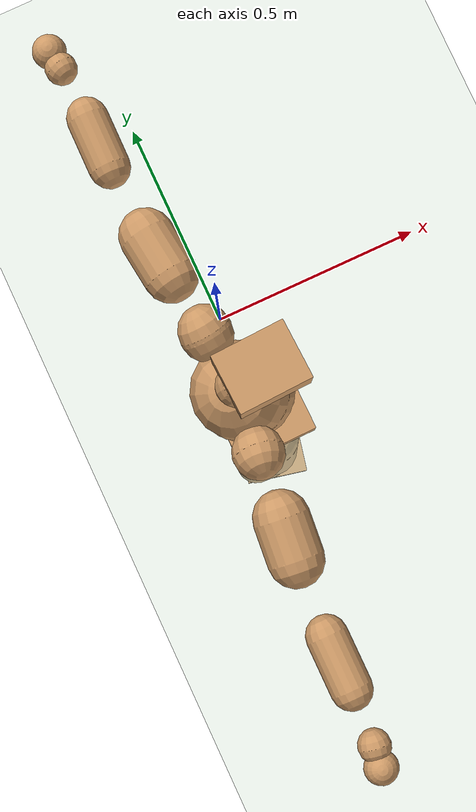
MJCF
<mujoco model="humanoid">
  <compiler coordinate="local" angle="radian"/>
  <default>
    <joint damping="0.0" armature="0.01" stiffness="0.0" limited="true"/>
    <geom conaffinity="1" condim="3" contype="7" margin="0.001" rgba="0.8 0.6 .4 1"/>
  </default>
  <asset>
    <texture type="skybox" builtin="gradient" rgb1=".4 .5 .6" rgb2="0 0 0" width="100" height="100"/>
    <texture builtin="flat" height="1278" mark="cross" markrgb="1 1 1" name="texgeom" random="0.01" rgb1="0.8 0.6 0.4" rgb2="0.8 0.6 0.4" type="cube" width="127"/>
    <texture builtin="checker" height="100" name="texplane" rgb1="0 0 0" rgb2="0.8 0.8 0.8" type="2d" width="100"/>
    <material name="MatPlane" reflectance="0.5" shininess="1" specular="1" texrepeat="60 60" texture="texplane"/>
    <material name="geom" texture="texgeom" texuniform="true"/>
  </asset>
  <worldbody>
    <light cutoff="100" diffuse="1 1 1" dir="-0 0 -1.3" directional="true" exponent="1" pos="0 0 1.3" specular=".1 .1 .1"/>
    <geom conaffinity="1" condim="3" name="floor" pos="0 0 0" rgba="0.8 0.9 0.8 1" size="100 100 .2" type="plane" material="MatPlane"/>
    <body name="Pelvis" pos="-0.0011 -0.2148 0.0426">
      <freejoint name="Pelvis"/>
      <geom type="box" contype="1" conaffinity="1" density="5359.374747" pos="-0.0052 -0.0001 -0.0125" size="0.0968 0.1184 0.0426" quat="1.0000 0.0000 0.0000 0.0091" name="Pelvis"/>
      <body name="L_Hip" pos="-0.0002 0.0786 -0.0909">
        <joint name="L_Hip_x" type="hinge" pos="0 0 0" axis="1 0 0" stiffness="1600" damping="160" armature="0.02" range="-180.0000 180.0000"/>
        <joint name="L_Hip_y" type="hinge" pos="0 0 0" axis="0 1 0" stiffness="1600" damping="160" armature="0.02" range="-180.0000 180.0000"/>
        <joint name="L_Hip_z" type="hinge" pos="0 0 0" axis="0 0 1" stiffness="1600" damping="160" armature="0.02" range="-180.0000 180.0000"/>
        <geom type="capsule" contype="1" conaffinity="1" density="2040.816327" size="0.067" fromto="-0.0032 0.0076 -0.0967 -0.0089 0.0214 -0.2715" name="L_Hip"/>
        <body name="L_Knee" pos="-0.012 0.029 -0.3682">
          <joint name="L_Knee_x" type="hinge" pos="0 0 0" axis="1 0 0" stiffness="1600" damping="160" armature="0.02" range="-180.0000 180.0000"/>
          <joint name="L_Knee_y" type="hinge" pos="0 0 0" axis="0 1 0" stiffness="1600" damping="160" armature="0.02" range="-180.0000 180.0000"/>
          <joint name="L_Knee_z" type="hinge" pos="0 0 0" axis="0 0 1" stiffness="1600" damping="160" armature="0.02" range="-180.0000 180.0000"/>
          <geom type="capsule" contype="1" conaffinity="1" density="1234.567901" size="0.057" fromto="-0.0103 -0.0025 -0.0864 -0.0370 -0.0091 -0.3097" name="L_Knee"/>
          <body name="L_Ankle" pos="-0.0473 -0.0116 -0.3961">
            <joint name="L_Ankle_x" type="hinge" pos="0 0 0" axis="1 0 0" stiffness="1600" damping="160" armature="0.02" range="-180.0000 180.0000"/>
            <joint name="L_Ankle_y" type="hinge" pos="0 0 0" axis="0 1 0" stiffness="1600" damping="160" armature="0.02" range="-180.0000 180.0000"/>
            <joint name="L_Ankle_z" type="hinge" pos="0 0 0" axis="0 0 1" stiffness="1600" damping="160" armature="0.02" range="-180.0000 180.0000"/>
            <geom type="box" contype="1" conaffinity="1" density="999.999949" pos="0.0598 0.0136 -0.0290" size="0.087 0.0503 0.0209" quat="0.9937 0.0000 0.0000 0.1117" name="L_Ankle"/>
            <body name="L_Toe" pos="0.1195 0.0272 -0.0581">
              <joint name="L_Toe_x" type="hinge" pos="0 0 0" axis="1 0 0" stiffness="1000" damping="100" armature="0.02" range="-180.0000 180.0000"/>
              <joint name="L_Toe_y" type="hinge" pos="0 0 0" axis="0 1 0" stiffness="1000" damping="100" armature="0.02" range="-180.0000 180.0000"/>
              <joint name="L_Toe_z" type="hinge" pos="0 0 0" axis="0 0 1" stiffness="1000" damping="100" armature="0.02" range="-180.0000 180.0000"/>
              <geom type="box" contype="1" conaffinity="1" density="8420186.111216" pos="0.0000 0.0000 0.0286" size="0.0011 0.0025 0.001" quat="0.9931 0.0000 0.0000 0.1177" name="L_Toe"/>
            </body>
          </body>
        </body>
      </body>
      <body name="R_Hip" pos="0.0026 -0.0762 -0.0908">
        <joint name="R_Hip_x" type="hinge" pos="0 0 0" axis="1 0 0" stiffness="1600" damping="160" armature="0.02" range="-180.0000 180.0000"/>
        <joint name="R_Hip_y" type="hinge" pos="0 0 0" axis="0 1 0" stiffness="1600" damping="160" armature="0.02" range="-180.0000 180.0000"/>
        <joint name="R_Hip_z" type="hinge" pos="0 0 0" axis="0 0 1" stiffness="1600" damping="160" armature="0.02" range="-180.0000 180.0000"/>
        <geom type="capsule" contype="1" conaffinity="1" density="2040.816327" size="0.0663" fromto="-0.0036 -0.0092 -0.0958 -0.0104 -0.0267 -0.2771" name="R_Hip"/>
        <body name="R_Knee" pos="-0.014 -0.0359 -0.3729">
          <joint name="R_Knee_x" type="hinge" pos="0 0 0" axis="1 0 0" stiffness="1600" damping="160" armature="0.02" range="-180.0000 180.0000"/>
          <joint name="R_Knee_y" type="hinge" pos="0 0 0" axis="0 1 0" stiffness="1600" damping="160" armature="0.02" range="-180.0000 180.0000"/>
          <joint name="R_Knee_z" type="hinge" pos="0 0 0" axis="0 0 1" stiffness="1600" damping="160" armature="0.02" range="-180.0000 180.0000"/>
          <geom type="capsule" contype="1" conaffinity="1" density="1234.567901" size="0.0571" fromto="-0.0101 0.0028 -0.0865 -0.0362 0.0100 -0.3099" name="R_Knee"/>
          <body name="R_Ankle" pos="-0.0463 0.0128 -0.3964">
            <joint name="R_Ankle_x" type="hinge" pos="0 0 0" axis="1 0 0" stiffness="1600" damping="160" armature="0.02" range="-180.0000 180.0000"/>
            <joint name="R_Ankle_y" type="hinge" pos="0 0 0" axis="0 1 0" stiffness="1600" damping="160" armature="0.02" range="-180.0000 180.0000"/>
            <joint name="R_Ankle_z" type="hinge" pos="0 0 0" axis="0 0 1" stiffness="1600" damping="160" armature="0.02" range="-180.0000 180.0000"/>
            <geom type="box" contype="1" conaffinity="1" density="1000.000011" pos="0.0619 -0.0134 -0.0244" size="0.0875 0.0489 0.0213" quat="0.9943 0.0000 0.0000 -0.1065" name="R_Ankle"/>
            <body name="R_Toe" pos="0.1239 -0.0268 -0.0488">
              <joint name="R_Toe_x" type="hinge" pos="0 0 0" axis="1 0 0" stiffness="1000" damping="100" armature="0.02" range="-180.0000 180.0000"/>
              <joint name="R_Toe_y" type="hinge" pos="0 0 0" axis="0 1 0" stiffness="1000" damping="100" armature="0.02" range="-180.0000 180.0000"/>
              <joint name="R_Toe_z" type="hinge" pos="0 0 0" axis="0 0 1" stiffness="1000" damping="100" armature="0.02" range="-180.0000 180.0000"/>
              <geom type="box" contype="1" conaffinity="1" density="8200562.166602" pos="0.0000 0.0000 0.0265" size="0.001 0.0025 0.0012" quat="0.9953 0.0000 0.0000 -0.0972" name="R_Toe"/>
            </body>
          </body>
        </body>
      </body>
      <body name="Torso" pos="-0.0333 -0.0029 0.1067">
        <joint name="Torso_x" type="hinge" pos="0 0 0" axis="1 0 0" stiffness="2000" damping="200" armature="0.02" range="-180.0000 180.0000"/>
        <joint name="Torso_y" type="hinge" pos="0 0 0" axis="0 1 0" stiffness="2000" damping="200" armature="0.02" range="-180.0000 180.0000"/>
        <joint name="Torso_z" type="hinge" pos="0 0 0" axis="0 0 1" stiffness="2000" damping="200" armature="0.02" range="-180.0000 180.0000"/>
        <geom type="capsule" contype="1" conaffinity="1" density="2040.816327" size="0.0793" fromto="-0.0046 0.0024 0.0792 -0.0024 0.0013 0.0419" name="Torso"/>
        <body name="Spine" pos="-0.007 0.0036 0.1211">
          <joint name="Spine_x" type="hinge" pos="0 0 0" axis="1 0 0" stiffness="2000" damping="200" armature="0.02" range="-180.0000 180.0000"/>
          <joint name="Spine_y" type="hinge" pos="0 0 0" axis="0 1 0" stiffness="2000" damping="200" armature="0.02" range="-180.0000 180.0000"/>
          <joint name="Spine_z" type="hinge" pos="0 0 0" axis="0 0 1" stiffness="2000" damping="200" armature="0.02" range="-180.0000 180.0000"/>
          <geom type="capsule" contype="1" conaffinity="1" density="2040.816327" size="0.0792" fromto="0.0418 0.0029 0.0673 -0.0113 -0.0008 -0.0181" name="Spine"/>
          <body name="Chest" pos="0.0305 0.0021 0.0491">
            <joint name="Chest_x" type="hinge" pos="0 0 0" axis="1 0 0" stiffness="2000" damping="200" armature="0.02" range="-180.0000 180.0000"/>
            <joint name="Chest_y" type="hinge" pos="0 0 0" axis="0 1 0" stiffness="2000" damping="200" armature="0.02" range="-180.0000 180.0000"/>
            <joint name="Chest_z" type="hinge" pos="0 0 0" axis="0 0 1" stiffness="2000" damping="200" armature="0.02" range="-180.0000 180.0000"/>
            <geom type="capsule" contype="1" conaffinity="1" density="2040.816327" size="0.1052" fromto="-0.0304 -0.0007 0.1007 -0.0172 -0.0004 0.0570" name="Chest"/>
            <body name="Neck" pos="-0.0568 -0.002 0.2215">
              <joint name="Neck_x" type="hinge" pos="0 0 0" axis="1 0 0" stiffness="1000" damping="100" armature="0.02" range="-180.0000 180.0000"/>
              <joint name="Neck_y" type="hinge" pos="0 0 0" axis="0 1 0" stiffness="1000" damping="100" armature="0.02" range="-180.0000 180.0000"/>
              <joint name="Neck_z" type="hinge" pos="0 0 0" axis="0 0 1" stiffness="1000" damping="100" armature="0.02" range="-180.0000 180.0000"/>
              <geom type="capsule" contype="1" conaffinity="1" density="1000" size="0.0442" fromto="0.0280 0.0002 0.0342 0.0201 0.0002 0.0245" name="Neck"/>
              <body name="Head" pos="0.0481 0.0004 0.0587">
                <joint name="Head_x" type="hinge" pos="0 0 0" axis="1 0 0" stiffness="1000" damping="100" armature="0.02" range="-180.0000 180.0000"/>
                <joint name="Head_y" type="hinge" pos="0 0 0" axis="0 1 0" stiffness="1000" damping="100" armature="0.02" range="-180.0000 180.0000"/>
                <joint name="Head_z" type="hinge" pos="0 0 0" axis="0 0 1" stiffness="1000" damping="100" armature="0.02" range="-180.0000 180.0000"/>
                <geom type="box" contype="1" conaffinity="1" density="2250.000085" pos="0.0250 0.0012 0.0304" size="0.0766 0.062 0.0539" quat="0.9997 0.0000 0.0000 0.0235" name="Head"/>
              </body>
            </body>
            <body name="L_Thorax" pos="-0.0409 0.0837 0.1269">
              <joint name="L_Thorax_x" type="hinge" pos="0 0 0" axis="1 0 0" stiffness="1000" damping="100" armature="0.02" range="-180.0000 180.0000"/>
              <joint name="L_Thorax_y" type="hinge" pos="0 0 0" axis="0 1 0" stiffness="1000" damping="100" armature="0.02" range="-180.0000 180.0000"/>
              <joint name="L_Thorax_z" type="hinge" pos="0 0 0" axis="0 0 1" stiffness="1000" damping="100" armature="0.02" range="-180.0000 180.0000"/>
              <geom type="capsule" contype="1" conaffinity="1" density="1000" size="0.0563" fromto="-0.0055 0.0524 0.0196 -0.0046 0.0437 0.0163" name="L_Thorax"/>
              <body name="L_Shoulder" pos="-0.0101 0.0962 0.0359">
                <joint name="L_Shoulder_x" type="hinge" pos="0 0 0" axis="1 0 0" stiffness="1000" damping="100" armature="0.02" range="-720.0000 720.0000"/>
                <joint name="L_Shoulder_y" type="hinge" pos="0 0 0" axis="0 1 0" stiffness="1000" damping="100" armature="0.02" range="-720.0000 720.0000"/>
                <joint name="L_Shoulder_z" type="hinge" pos="0 0 0" axis="0 0 1" stiffness="1000" damping="100" armature="0.02" range="-720.0000 720.0000"/>
                <geom type="capsule" contype="1" conaffinity="1" density="1000" size="0.0579" fromto="-0.0104 0.0871 -0.0048 -0.0218 0.1829 -0.0100" name="L_Shoulder"/>
                <body name="L_Elbow" pos="-0.0322 0.2701 -0.0148">
                  <joint name="L_Elbow_x" type="hinge" pos="0 0 0" axis="1 0 0" stiffness="1000" damping="100" armature="0.02" range="-720.0000 720.0000"/>
                  <joint name="L_Elbow_y" type="hinge" pos="0 0 0" axis="0 1 0" stiffness="1000" damping="100" armature="0.02" range="-720.0000 720.0000"/>
                  <joint name="L_Elbow_z" type="hinge" pos="0 0 0" axis="0 0 1" stiffness="1000" damping="100" armature="0.02" range="-720.0000 720.0000"/>
                  <geom type="capsule" contype="1" conaffinity="1" density="1000" size="0.0436" fromto="0.0008 0.0735 0.0030 0.0019 0.1861 0.0075" name="L_Elbow"/>
                  <body name="L_Wrist" pos="0.0027 0.2596 0.0105">
                    <joint name="L_Wrist_x" type="hinge" pos="0 0 0" axis="1 0 0" stiffness="600" damping="60" armature="0.02" range="-180.0000 180.0000"/>
                    <joint name="L_Wrist_y" type="hinge" pos="0 0 0" axis="0 1 0" stiffness="600" damping="60" armature="0.02" range="-180.0000 180.0000"/>
                    <joint name="L_Wrist_z" type="hinge" pos="0 0 0" axis="0 0 1" stiffness="600" damping="60" armature="0.02" range="-180.0000 180.0000"/>
                    <geom type="capsule" contype="1" conaffinity="1" density="1000" size="0.0337" fromto="-0.0071 0.0438 -0.0053 -0.0075 0.0457 -0.0056" name="L_Wrist"/>
                    <body name="L_Hand" pos="-0.0146 0.0895 -0.0109">
                      <joint name="L_Hand_x" type="hinge" pos="0 0 0" axis="1 0 0" stiffness="600" damping="60" armature="0.02" range="-180.0000 180.0000"/>
                      <joint name="L_Hand_y" type="hinge" pos="0 0 0" axis="0 1 0" stiffness="600" damping="60" armature="0.02" range="-180.0000 180.0000"/>
                      <joint name="L_Hand_z" type="hinge" pos="0 0 0" axis="0 0 1" stiffness="600" damping="60" armature="0.02" range="-180.0000 180.0000"/>
                      <geom type="sphere" contype="1" conaffinity="1" density="1000" size="0.0360" pos="0.0000 0.0000 0.0000" name="L_Hand"/>
                    </body>
                  </body>
                </body>
              </body>
            </body>
            <body name="R_Thorax" pos="-0.0454 -0.0848 0.1248">
              <joint name="R_Thorax_x" type="hinge" pos="0 0 0" axis="1 0 0" stiffness="1000" damping="100" armature="0.02" range="-180.0000 180.0000"/>
              <joint name="R_Thorax_y" type="hinge" pos="0 0 0" axis="0 1 0" stiffness="1000" damping="100" armature="0.02" range="-180.0000 180.0000"/>
              <joint name="R_Thorax_z" type="hinge" pos="0 0 0" axis="0 0 1" stiffness="1000" damping="100" armature="0.02" range="-180.0000 180.0000"/>
              <geom type="capsule" contype="1" conaffinity="1" density="1000" size="0.0548" fromto="-0.0061 -0.0513 0.0183 -0.0057 -0.0477 0.0170" name="R_Thorax"/>
              <body name="R_Shoulder" pos="-0.0117 -0.099 0.0353">
                <joint name="R_Shoulder_x" type="hinge" pos="0 0 0" axis="1 0 0" stiffness="1000" damping="100" armature="0.02" range="-720.0000 720.0000"/>
                <joint name="R_Shoulder_y" type="hinge" pos="0 0 0" axis="0 1 0" stiffness="1000" damping="100" armature="0.02" range="-720.0000 720.0000"/>
                <joint name="R_Shoulder_z" type="hinge" pos="0 0 0" axis="0 0 1" stiffness="1000" damping="100" armature="0.02" range="-720.0000 720.0000"/>
                <geom type="capsule" contype="1" conaffinity="1" density="1000" size="0.0588" fromto="-0.0080 -0.0883 -0.0049 -0.0160 -0.1764 -0.0097" name="R_Shoulder"/>
                <body name="R_Elbow" pos="-0.0241 -0.2647 -0.0146">
                  <joint name="R_Elbow_x" type="hinge" pos="0 0 0" axis="1 0 0" stiffness="1000" damping="100" armature="0.02" range="-720.0000 720.0000"/>
                  <joint name="R_Elbow_y" type="hinge" pos="0 0 0" axis="0 1 0" stiffness="1000" damping="100" armature="0.02" range="-720.0000 720.0000"/>
                  <joint name="R_Elbow_z" type="hinge" pos="0 0 0" axis="0 0 1" stiffness="1000" damping="100" armature="0.02" range="-720.0000 720.0000"/>
                  <geom type="capsule" contype="1" conaffinity="1" density="1000" size="0.0434" fromto="0.0001 -0.0733 0.0032 0.0002 -0.1891 0.0083" name="R_Elbow"/>
                  <body name="R_Wrist" pos="0.0003 -0.2624 0.0116">
                    <joint name="R_Wrist_x" type="hinge" pos="0 0 0" axis="1 0 0" stiffness="600" damping="60" armature="0.02" range="-180.0000 180.0000"/>
                    <joint name="R_Wrist_y" type="hinge" pos="0 0 0" axis="0 1 0" stiffness="600" damping="60" armature="0.02" range="-180.0000 180.0000"/>
                    <joint name="R_Wrist_z" type="hinge" pos="0 0 0" axis="0 0 1" stiffness="600" damping="60" armature="0.02" range="-180.0000 180.0000"/>
                    <geom type="capsule" contype="1" conaffinity="1" density="1000" size="0.0342" fromto="-0.0057 -0.0436 -0.0040 -0.0060 -0.0456 -0.0042" name="R_Wrist"/>
                    <body name="R_Hand" pos="-0.0117 -0.0892 -0.0081">
                      <joint name="R_Hand_x" type="hinge" pos="0 0 0" axis="1 0 0" stiffness="600" damping="60" armature="0.02" range="-180.0000 180.0000"/>
                      <joint name="R_Hand_y" type="hinge" pos="0 0 0" axis="0 1 0" stiffness="600" damping="60" armature="0.02" range="-180.0000 180.0000"/>
                      <joint name="R_Hand_z" type="hinge" pos="0 0 0" axis="0 0 1" stiffness="600" damping="60" armature="0.02" range="-180.0000 180.0000"/>
                      <geom type="sphere" contype="1" conaffinity="1" density="1000" size="0.0358" pos="0.0000 0.0000 0.0000" name="R_Hand"/>
                    </body>
                  </body>
                </body>
              </body>
            </body>
          </body>
        </body>
      </body>
    </body>
  </worldbody>
  <actuator>
    <motor name="L_Hip_x" joint="L_Hip_x" gear="500"/>
    <motor name="L_Hip_y" joint="L_Hip_y" gear="500"/>
    <motor name="L_Hip_z" joint="L_Hip_z" gear="500"/>
    <motor name="L_Knee_x" joint="L_Knee_x" gear="500"/>
    <motor name="L_Knee_y" joint="L_Knee_y" gear="500"/>
    <motor name="L_Knee_z" joint="L_Knee_z" gear="500"/>
    <motor name="L_Ankle_x" joint="L_Ankle_x" gear="500"/>
    <motor name="L_Ankle_y" joint="L_Ankle_y" gear="500"/>
    <motor name="L_Ankle_z" joint="L_Ankle_z" gear="500"/>
    <motor name="L_Toe_x" joint="L_Toe_x" gear="500"/>
    <motor name="L_Toe_y" joint="L_Toe_y" gear="500"/>
    <motor name="L_Toe_z" joint="L_Toe_z" gear="500"/>
    <motor name="R_Hip_x" joint="R_Hip_x" gear="500"/>
    <motor name="R_Hip_y" joint="R_Hip_y" gear="500"/>
    <motor name="R_Hip_z" joint="R_Hip_z" gear="500"/>
    <motor name="R_Knee_x" joint="R_Knee_x" gear="500"/>
    <motor name="R_Knee_y" joint="R_Knee_y" gear="500"/>
    <motor name="R_Knee_z" joint="R_Knee_z" gear="500"/>
    <motor name="R_Ankle_x" joint="R_Ankle_x" gear="500"/>
    <motor name="R_Ankle_y" joint="R_Ankle_y" gear="500"/>
    <motor name="R_Ankle_z" joint="R_Ankle_z" gear="500"/>
    <motor name="R_Toe_x" joint="R_Toe_x" gear="500"/>
    <motor name="R_Toe_y" joint="R_Toe_y" gear="500"/>
    <motor name="R_Toe_z" joint="R_Toe_z" gear="500"/>
    <motor name="Torso_x" joint="Torso_x" gear="500"/>
    <motor name="Torso_y" joint="Torso_y" gear="500"/>
    <motor name="Torso_z" joint="Torso_z" gear="500"/>
    <motor name="Spine_x" joint="Spine_x" gear="500"/>
    <motor name="Spine_y" joint="Spine_y" gear="500"/>
    <motor name="Spine_z" joint="Spine_z" gear="500"/>
    <motor name="Chest_x" joint="Chest_x" gear="500"/>
    <motor name="Chest_y" joint="Chest_y" gear="500"/>
    <motor name="Chest_z" joint="Chest_z" gear="500"/>
    <motor name="Neck_x" joint="Neck_x" gear="500"/>
    <motor name="Neck_y" joint="Neck_y" gear="500"/>
    <motor name="Neck_z" joint="Neck_z" gear="500"/>
    <motor name="Head_x" joint="Head_x" gear="500"/>
    <motor name="Head_y" joint="Head_y" gear="500"/>
    <motor name="Head_z" joint="Head_z" gear="500"/>
    <motor name="L_Thorax_x" joint="L_Thorax_x" gear="500"/>
    <motor name="L_Thorax_y" joint="L_Thorax_y" gear="500"/>
    <motor name="L_Thorax_z" joint="L_Thorax_z" gear="500"/>
    <motor name="L_Shoulder_x" joint="L_Shoulder_x" gear="500"/>
    <motor name="L_Shoulder_y" joint="L_Shoulder_y" gear="500"/>
    <motor name="L_Shoulder_z" joint="L_Shoulder_z" gear="500"/>
    <motor name="L_Elbow_x" joint="L_Elbow_x" gear="500"/>
    <motor name="L_Elbow_y" joint="L_Elbow_y" gear="500"/>
    <motor name="L_Elbow_z" joint="L_Elbow_z" gear="500"/>
    <motor name="L_Wrist_x" joint="L_Wrist_x" gear="500"/>
    <motor name="L_Wrist_y" joint="L_Wrist_y" gear="500"/>
    <motor name="L_Wrist_z" joint="L_Wrist_z" gear="500"/>
    <motor name="L_Hand_x" joint="L_Hand_x" gear="500"/>
    <motor name="L_Hand_y" joint="L_Hand_y" gear="500"/>
    <motor name="L_Hand_z" joint="L_Hand_z" gear="500"/>
    <motor name="R_Thorax_x" joint="R_Thorax_x" gear="500"/>
    <motor name="R_Thorax_y" joint="R_Thorax_y" gear="500"/>
    <motor name="R_Thorax_z" joint="R_Thorax_z" gear="500"/>
    <motor name="R_Shoulder_x" joint="R_Shoulder_x" gear="500"/>
    <motor name="R_Shoulder_y" joint="R_Shoulder_y" gear="500"/>
    <motor name="R_Shoulder_z" joint="R_Shoulder_z" gear="500"/>
    <motor name="R_Elbow_x" joint="R_Elbow_x" gear="500"/>
    <motor name="R_Elbow_y" joint="R_Elbow_y" gear="500"/>
    <motor name="R_Elbow_z" joint="R_Elbow_z" gear="500"/>
    <motor name="R_Wrist_x" joint="R_Wrist_x" gear="500"/>
    <motor name="R_Wrist_y" joint="R_Wrist_y" gear="500"/>
    <motor name="R_Wrist_z" joint="R_Wrist_z" gear="500"/>
    <motor name="R_Hand_x" joint="R_Hand_x" gear="500"/>
    <motor name="R_Hand_y" joint="R_Hand_y" gear="500"/>
    <motor name="R_Hand_z" joint="R_Hand_z" gear="500"/>
  </actuator>
  <contact>
    <exclude body1="Torso" body2="Chest"/>
    <exclude body1="Head" body2="Chest"/>
    <exclude body1="R_Knee" body2="R_Toe"/>
    <exclude body1="R_Knee" body2="L_Ankle"/>
    <exclude body1="R_Knee" body2="L_Toe"/>
    <exclude body1="L_Knee" body2="L_Toe"/>
    <exclude body1="L_Knee" body2="R_Ankle"/>
    <exclude body1="L_Knee" body2="R_Toe"/>
    <exclude body1="L_Shoulder" body2="Chest"/>
    <exclude body1="R_Shoulder" body2="Chest"/>
  </contact>
  <sensor/>
  <size njmax="700" nconmax="700"/>
</mujoco>
